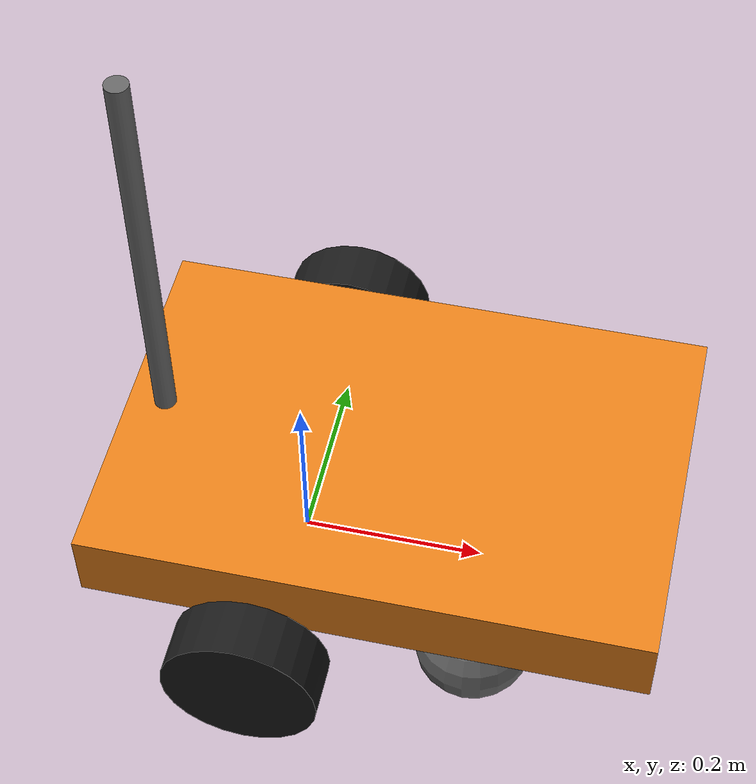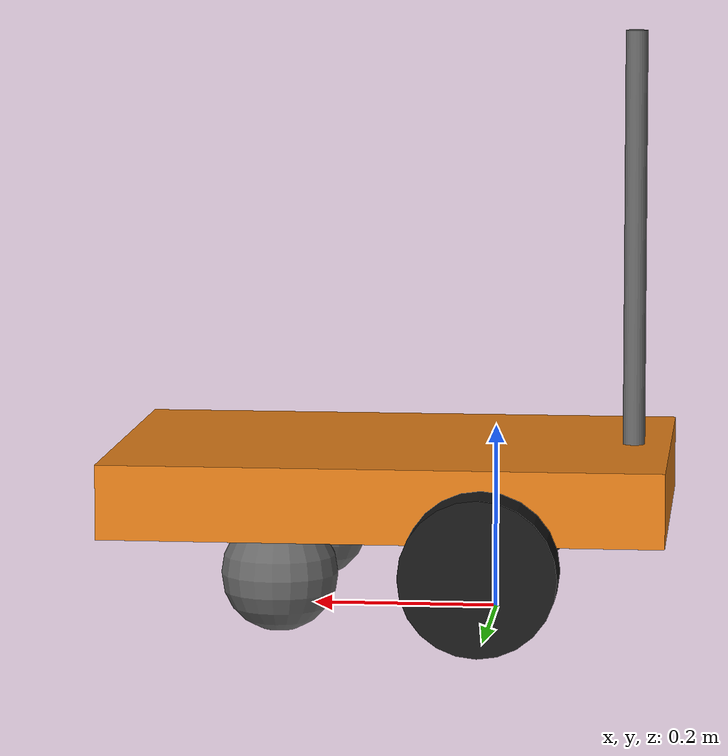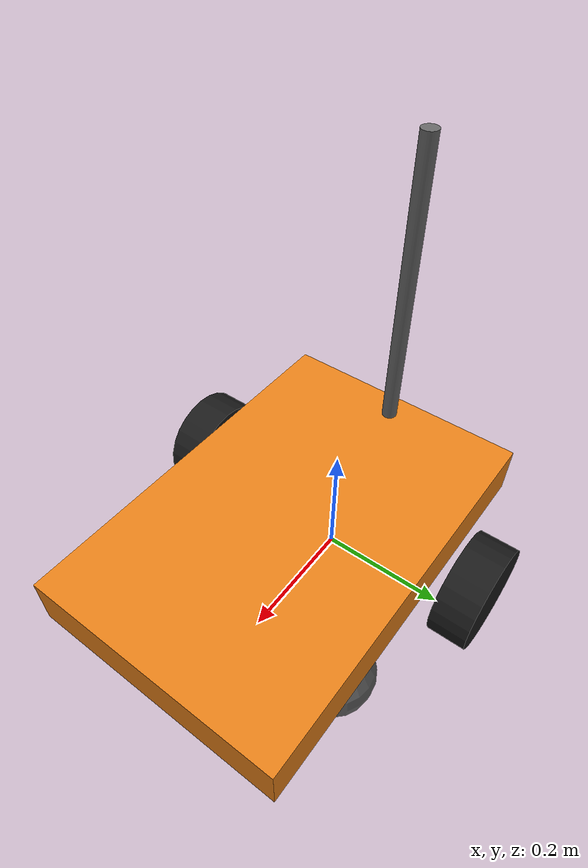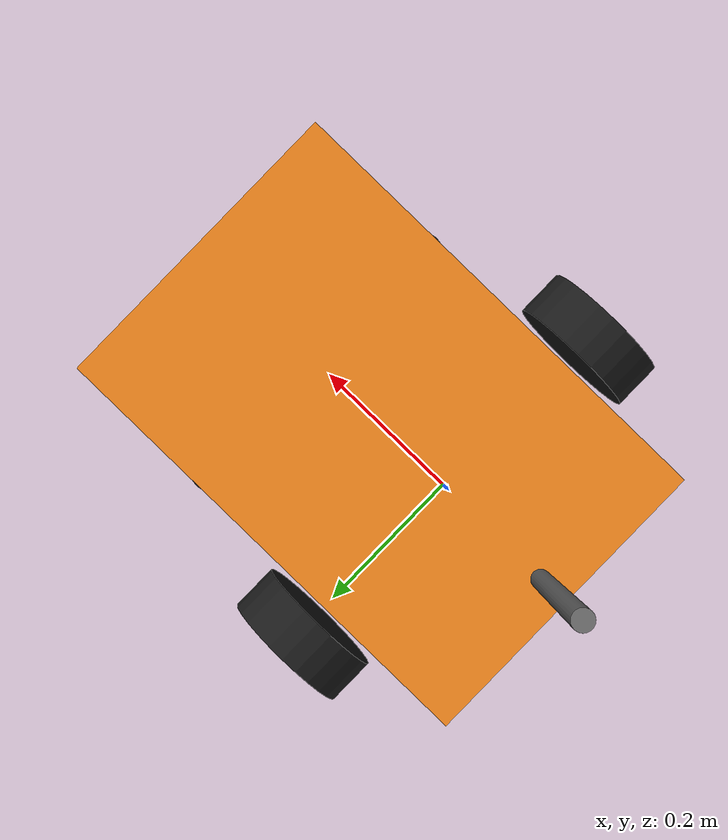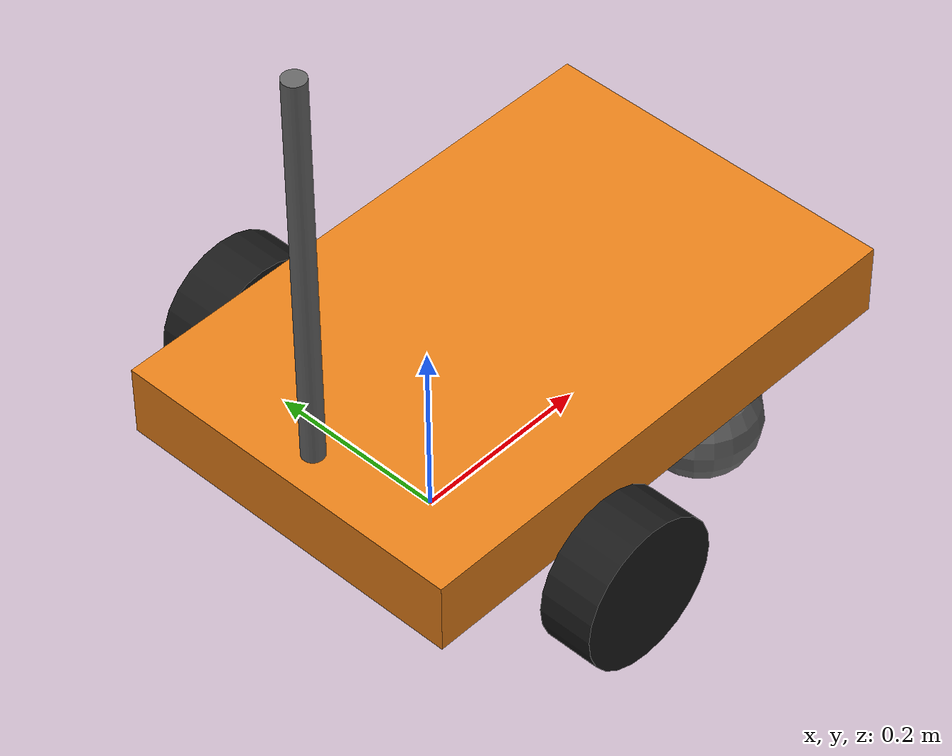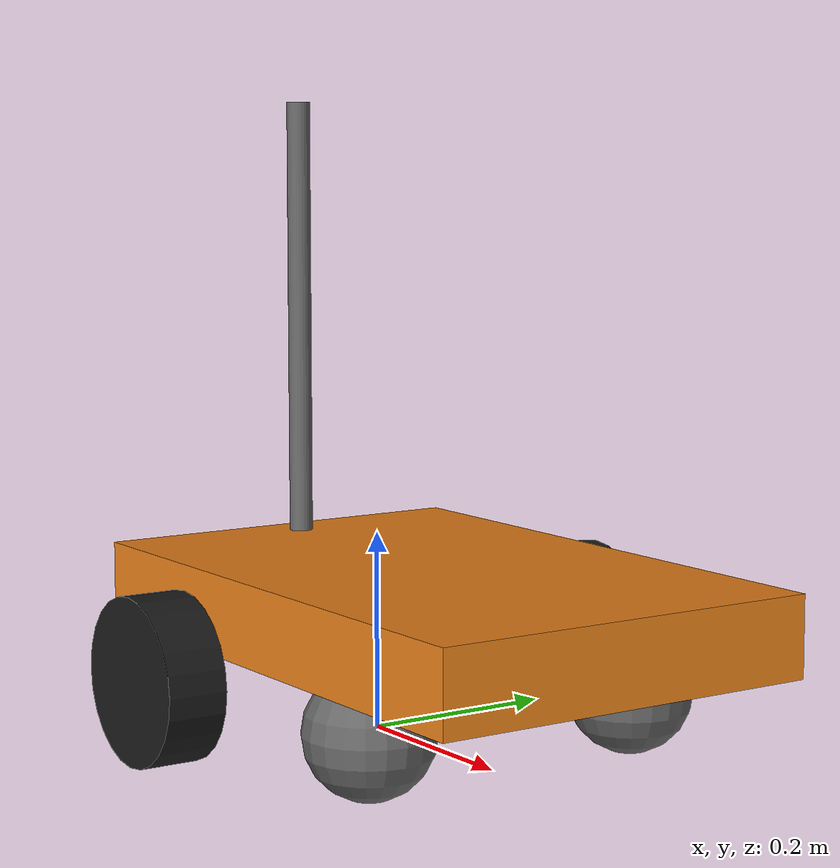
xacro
<?xml version="1.0"?>
<robot name="hoverbot" xmlns:xacro="http://www.ros.org/wiki/xacro">

  <!-- ==== Geometry ========================================================= -->
  <!-- 6.5" hoverboard hub wheel: 165 mm diameter. This one is real. -->
  <xacro:property name="wheel_radius" value="0.0825"/>
  <xacro:property name="wheel_width" value="0.06"/>
  <xacro:property name="wheel_separation" value="0.5"/>

  <!-- TODO: all placeholders until the chassis is cut. -->
  <xacro:property name="base_length" value="0.60"/>
  <xacro:property name="base_width" value="0.40"/>
  <xacro:property name="base_height" value="0.08"/>
  <xacro:property name="camera_pitch" value="0.09"/>
  <!-- Deck sits just above the axle. -->
  <xacro:property name="base_z" value="${wheel_radius + 0.02}"/>

  <xacro:property name="caster_radius" value="0.0625"/>  <!-- 125 mm caster -->
  <xacro:property name="caster_x" value="0.22"/>          <!-- forward of the axle -->
  <xacro:property name="caster_y" value="0.15"/>

  <!-- Magnetometer mast. Decision 4: >30 cm above the deck, away from the motor
       cables, or the hub motors' field swamps the earth's. -->
  <xacro:property name="mast_height" value="0.45"/>

  <xacro:property name="wheel_mass" value="2.5"/>
  <xacro:property name="base_mass" value="12.0"/>  <!-- TODO: weigh it -->

  <material name="grey"><color rgba="0.4 0.4 0.4 1.0"/></material>
  <material name="black"><color rgba="0.1 0.1 0.1 1.0"/></material>
  <material name="orange"><color rgba="0.9 0.5 0.1 1.0"/></material>

  <!-- ==== Macros =========================================================== -->
  <xacro:macro name="box_inertia" params="m x y z">
    <inertial>
      <mass value="${m}"/>
      <inertia ixx="${m*(y*y+z*z)/12.0}" iyy="${m*(x*x+z*z)/12.0}"
               izz="${m*(x*x+y*y)/12.0}" ixy="0" ixz="0" iyz="0"/>
    </inertial>
  </xacro:macro>

  <xacro:macro name="cylinder_inertia" params="m r l">
    <inertial>
      <mass value="${m}"/>
      <inertia ixx="${m*(3*r*r+l*l)/12.0}" iyy="${m*(3*r*r+l*l)/12.0}"
               izz="${m*r*r/2.0}" ixy="0" ixz="0" iyz="0"/>
    </inertial>
  </xacro:macro>

  <!-- Driven hub wheel. Rotates about its own y axis, hence the rpy roll. -->
  <xacro:macro name="drive_wheel" params="prefix reflect">
    <link name="${prefix}_wheel">
      <visual>
        <origin rpy="${pi/2} 0 0"/>
        <geometry><cylinder radius="${wheel_radius}" length="${wheel_width}"/></geometry>
        <material name="black"/>
      </visual>
      <collision>
        <origin rpy="${pi/2} 0 0"/>
        <geometry><cylinder radius="${wheel_radius}" length="${wheel_width}"/></geometry>
      </collision>
      <xacro:cylinder_inertia m="${wheel_mass}" r="${wheel_radius}" l="${wheel_width}"/>
    </link>

    <!-- Joint names must match what hoverboard_bridge publishes on
         /joint_states, or robot_state_publisher silently animates nothing. -->
    <joint name="${prefix}_wheel_joint" type="continuous">
      <parent link="base_link"/>
      <child link="${prefix}_wheel"/>
      <origin xyz="0 ${reflect * wheel_separation / 2.0} ${wheel_radius}"/>
      <axis xyz="0 1 0"/>
    </joint>
  </xacro:macro>

  <xacro:macro name="caster" params="prefix x y">
    <link name="${prefix}_caster">
      <visual>
        <geometry><sphere radius="${caster_radius}"/></geometry>
        <material name="grey"/>
      </visual>
      <collision>
        <geometry><sphere radius="${caster_radius}"/></geometry>
      </collision>
      <inertial>
        <mass value="0.5"/>
        <inertia ixx="0.001" iyy="0.001" izz="0.001" ixy="0" ixz="0" iyz="0"/>
      </inertial>
    </link>
    <joint name="${prefix}_caster_joint" type="fixed">
      <parent link="base_link"/>
      <child link="${prefix}_caster"/>
      <origin xyz="${x} ${y} ${caster_radius}"/>
    </joint>
  </xacro:macro>

  <!-- ==== Links ============================================================ -->
  <!-- base_link sits on the ground, centred on the drive axle. Ground level
       keeps two_d_mode honest and makes the Nav2 footprint trivial. -->
  <link name="base_link"/>

  <link name="chassis">
    <visual>
      <geometry><box size="${base_length} ${base_width} ${base_height}"/></geometry>
      <material name="orange"/>
    </visual>
    <collision>
      <geometry><box size="${base_length} ${base_width} ${base_height}"/></geometry>
    </collision>
    <xacro:box_inertia m="${base_mass}" x="${base_length}" y="${base_width}" z="${base_height}"/>
  </link>
  <joint name="chassis_joint" type="fixed">
    <parent link="base_link"/>
    <child link="chassis"/>
    <origin xyz="${caster_x/2.0} 0 ${base_z + base_height/2.0}"/>
  </joint>

  <xacro:drive_wheel prefix="left" reflect="1"/>
  <xacro:drive_wheel prefix="right" reflect="-1"/>
  <xacro:caster prefix="front_left" x="${caster_x}" y="${caster_y}"/>
  <xacro:caster prefix="front_right" x="${caster_x}" y="${-caster_y}"/>

  <!-- ==== Sensor frames ==================================================== -->
  <link name="imu_link"/>
  <joint name="imu_joint" type="fixed">
    <parent link="base_link"/>
    <child link="imu_link"/>
    <!-- TODO: measure once mounted. rpy must describe the chip's real
         orientation — REP-103 wants x forward, y left, z up. -->
    <origin xyz="0 0 ${base_z + base_height}" rpy="0 0 0"/>
  </joint>

  <link name="mast_link">
    <visual>
      <origin xyz="0 0 ${mast_height/2.0}"/>
      <geometry><cylinder radius="0.012" length="${mast_height}"/></geometry>
      <material name="grey"/>
    </visual>
  </link>
  <joint name="mast_joint" type="fixed">
    <parent link="base_link"/>
    <child link="mast_link"/>
    <origin xyz="${-0.15} 0 ${base_z + base_height}"/>
  </joint>

  <link name="mag_link"/>
  <joint name="mag_joint" type="fixed">
    <parent link="mast_link"/>
    <child link="mag_link"/>
    <origin xyz="0 0 ${mast_height}" rpy="0 0 0"/>
  </joint>

  <link name="gps_link"/>
  <joint name="gps_joint" type="fixed">
    <parent link="mast_link"/>
    <child link="gps_link"/>
    <origin xyz="0 0 ${mast_height - 0.08}"/>
  </joint>

  <!-- Pi Camera V2, forward and slightly down for ground segmentation
       (roadmap step 7). -->
  <link name="camera_link"/>
  <joint name="camera_joint" type="fixed">
    <parent link="base_link"/>
    <child link="camera_link"/>
    <origin xyz="${base_length/2.0} 0 ${base_z + base_height + 0.05}" rpy="0 ${camera_pitch} 0"/>
  </joint>

  <link name="camera_optical_link"/>
  <joint name="camera_optical_joint" type="fixed">
    <parent link="camera_link"/>
    <child link="camera_optical_link"/>
    <origin xyz="0 0 0" rpy="${-pi/2} 0 ${-pi/2}"/>
  </joint>

</robot>
